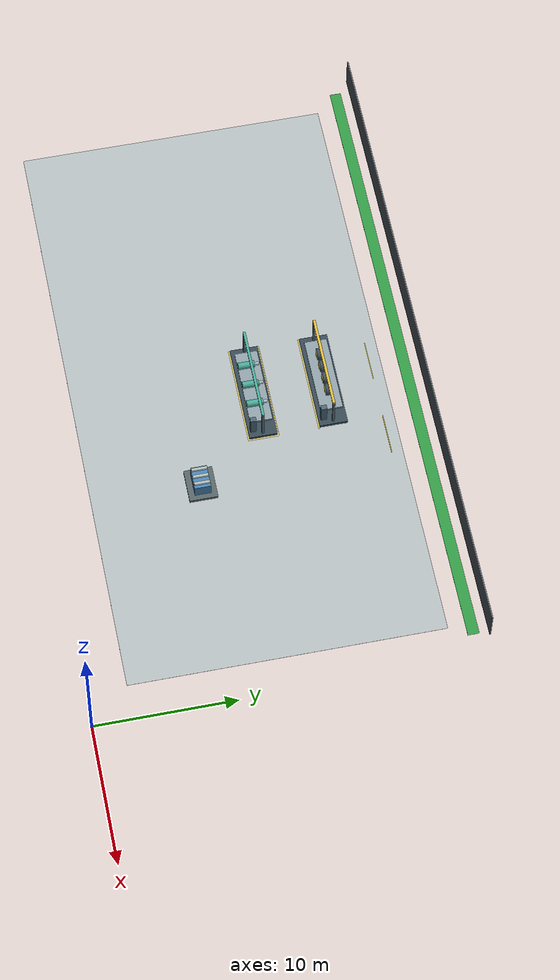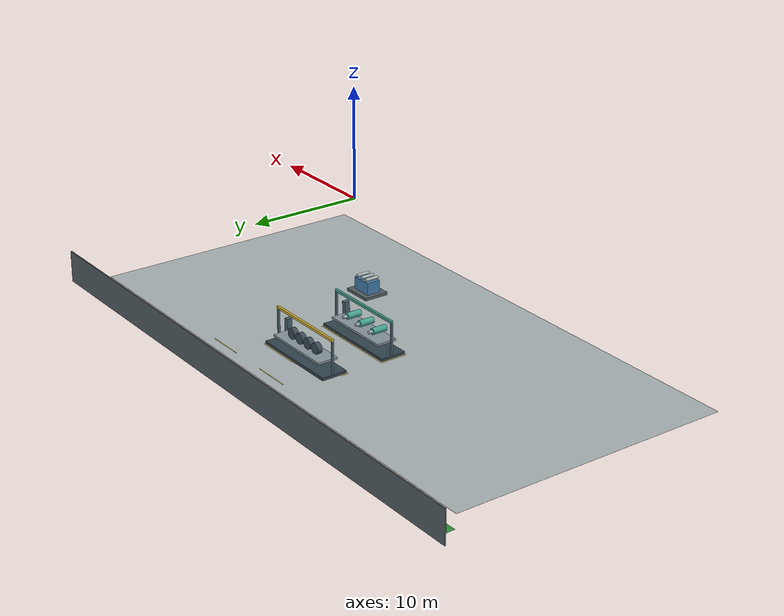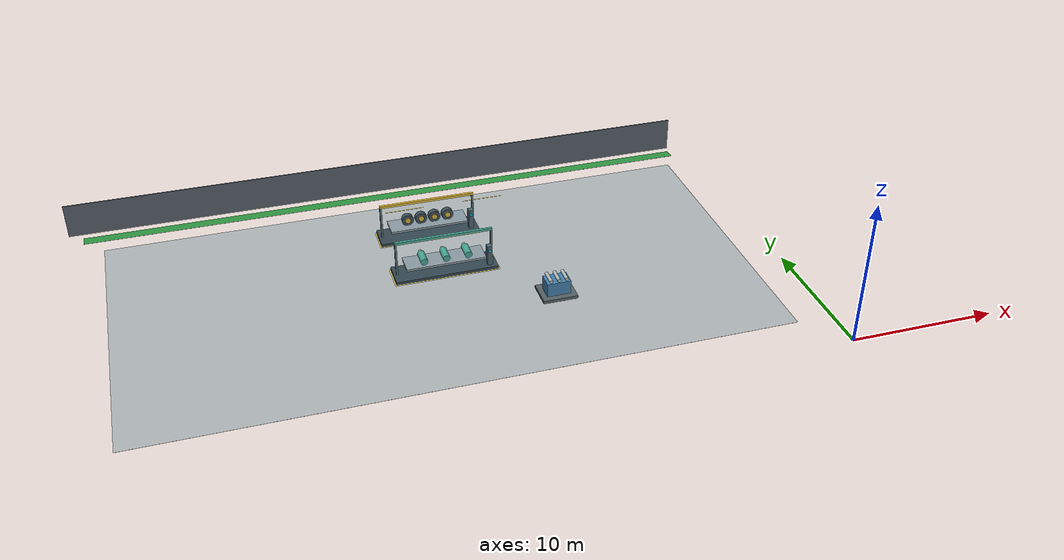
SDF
<sdf version="1.7">
 <world name="warehouse_layout_demo">
  <include><uri>model://sun</uri></include>
  <model name="nw_working_floor">
   <static>true</static>
   <pose>-24.0 13.8 0.012 0 0 0</pose>
   <link name="marking">
    <visual name="visual">
     <geometry><box><size>43.0 22.0 0.012</size></box></geometry>
     <material><ambient>0.67 0.70 0.71 1</ambient><diffuse>0.67 0.70 0.71 1</diffuse></material>
    </visual>
   </link>
  </model>
  <model name="pedestrian_north_west">
   <static>true</static>
   <pose>-24.3 26.4 0.055 0 0 0</pose>
   <link name="marking">
    <visual name="visual">
     <geometry><box><size>45.2 0.8 0.012</size></box></geometry>
     <material><ambient>0.18 0.57 0.25 1</ambient><diffuse>0.18 0.57 0.25 1</diffuse></material>
    </visual>
   </link>
  </model>
  <model name="north_fence_west">
   <static>true</static>
   <pose>-24.7 27.5 1.25 0 0 0</pose>
   <link name="link">
    <collision name="collision">
     <geometry><box><size>46.4 0.09 2.5</size></box></geometry>
     <surface><friction><ode><mu>0.9</mu><mu2>0.9</mu2></ode></friction></surface>
    </collision>
    <visual name="visual">
     <geometry><box><size>46.4 0.09 2.5</size></box></geometry>
     <material><ambient>0.33 0.37 0.40 1</ambient><diffuse>0.33 0.37 0.40 1</diffuse></material>
    </visual>
   </link>
  </model>
  <model name="parts_kit_2_line_2_nw">
   <static>true</static>
   <pose>-16.5 10.5 0 0 0 0</pose>
   <link name="fixture">
    <collision name="collision">
     <pose>0 0 0.9 0 0 0</pose>
     <geometry><box><size>2.4 2.0 1.8</size></box></geometry>
    </collision>
    <visual name="kit_frame">
     <pose>0 0 0.12 0 0 0</pose>
     <geometry><box><size>2.4 2.0 0.24</size></box></geometry>
     <material><ambient>0.32 0.37 0.38 1</ambient><diffuse>0.32 0.37 0.38 1</diffuse></material>
    </visual>
    <visual name="engine_crate">
     <pose>0 0 0.7 0 0 0</pose>
     <geometry><box><size>1.65 1.14 1.02</size></box></geometry>
     <material><ambient>0.26 0.49 0.67 1</ambient><diffuse>0.26 0.49 0.67 1</diffuse></material>
    </visual>
    <visual name="pipe_0">
     <pose>-0.55 0 1.38 1.57079632679 0 0</pose>
     <geometry><cylinder><radius>0.12</radius><length>1.1</length></cylinder></geometry>
     <material><ambient>0.69 0.73 0.72 1</ambient><diffuse>0.69 0.73 0.72 1</diffuse></material>
    </visual>
    <visual name="pipe_1">
     <pose>0 0 1.38 1.57079632679 0 0</pose>
     <geometry><cylinder><radius>0.12</radius><length>1.1</length></cylinder></geometry>
     <material><ambient>0.69 0.73 0.72 1</ambient><diffuse>0.69 0.73 0.72 1</diffuse></material>
    </visual>
    <visual name="pipe_2">
     <pose>0.55 0 1.38 1.57079632679 0 0</pose>
     <geometry><cylinder><radius>0.12</radius><length>1.1</length></cylinder></geometry>
     <material><ambient>0.69 0.73 0.72 1</ambient><diffuse>0.69 0.73 0.72 1</diffuse></material>
    </visual>
   </link>
  </model>
  <model name="part_stage_2_line_3_nw_pad">
   <static>true</static>
   <pose>-23.0 15.5 0.012 0 0 0</pose>
   <link name="marking">
    <visual name="visual">
     <geometry><box><size>7.4 2.2 0.012</size></box></geometry>
     <material><ambient>0.87 0.78 0.39 1</ambient><diffuse>0.87 0.78 0.39 1</diffuse></material>
    </visual>
   </link>
  </model>
  <model name="part_stage_2_line_3_nw">
   <static>true</static>
   <pose>-23.0 15.5 0 0 0 0</pose>
   <link name="fixture">
    <collision name="collision">
     <pose>0 0 1.4 0 0 0</pose>
     <geometry><box><size>7.2 2.0 2.8</size></box></geometry>
    </collision>
    <visual name="machine_base">
     <pose>0 0 0.12 0 0 0</pose>
     <geometry><box><size>7.2 2.0 0.24</size></box></geometry>
     <material><ambient>0.20 0.27 0.31 1</ambient><diffuse>0.20 0.27 0.31 1</diffuse></material>
    </visual>
    <visual name="work_table">
     <pose>0 0 0.92 0 0 0</pose>
     <geometry><box><size>5.6 1.6 0.16</size></box></geometry>
     <material><ambient>0.53 0.59 0.62 1</ambient><diffuse>0.53 0.59 0.62 1</diffuse></material>
    </visual>
    <visual name="controller">
     <pose>3.05 -0.63 1.06 0 0 0</pose>
     <geometry><box><size>0.35 0.42 1.46</size></box></geometry>
     <material><ambient>0.29 0.38 0.43 1</ambient><diffuse>0.29 0.38 0.43 1</diffuse></material>
    </visual>
    <visual name="control_screen">
     <pose>3.05 -0.85 1.45 0 0 0</pose>
     <geometry><box><size>0.25 0.02 0.2</size></box></geometry>
     <material><ambient>0.09 0.64 0.75 1</ambient><diffuse>0.09 0.64 0.75 1</diffuse></material>
    </visual>
    <visual name="hoist_post_0">
     <pose>-3.35 0 1.4 0 0 0</pose>
     <geometry><box><size>0.14 0.16 2.72</size></box></geometry>
     <material><ambient>0.31 0.40 0.45 1</ambient><diffuse>0.31 0.40 0.45 1</diffuse></material>
    </visual>
    <visual name="hoist_post_1">
     <pose>3.35 0 1.4 0 0 0</pose>
     <geometry><box><size>0.14 0.16 2.72</size></box></geometry>
     <material><ambient>0.31 0.40 0.45 1</ambient><diffuse>0.31 0.40 0.45 1</diffuse></material>
    </visual>
    <visual name="hoist_beam">
     <pose>0 0 2.71 0 0 0</pose>
     <geometry><box><size>6.85 0.18 0.18</size></box></geometry>
     <material><ambient>0.27 0.64 0.57 1</ambient><diffuse>0.27 0.64 0.57 1</diffuse></material>
    </visual>
    <visual name="ram_body_0">
     <pose>-1.55 -0.22 1.39 1.57079632679 0 0</pose>
     <geometry><cylinder><radius>0.25</radius><length>1.15</length></cylinder></geometry>
     <material><ambient>0.27 0.64 0.57 1</ambient><diffuse>0.27 0.64 0.57 1</diffuse></material>
    </visual>
    <visual name="ram_rod_0">
     <pose>-1.55 0.36 1.39 1.57079632679 0 0</pose>
     <geometry><cylinder><radius>0.12</radius><length>0.64</length></cylinder></geometry>
     <material><ambient>0.64 0.69 0.71 1</ambient><diffuse>0.64 0.69 0.71 1</diffuse></material>
    </visual>
    <visual name="ram_body_1">
     <pose>0 -0.22 1.39 1.57079632679 0 0</pose>
     <geometry><cylinder><radius>0.25</radius><length>1.15</length></cylinder></geometry>
     <material><ambient>0.27 0.64 0.57 1</ambient><diffuse>0.27 0.64 0.57 1</diffuse></material>
    </visual>
    <visual name="ram_rod_1">
     <pose>0 0.36 1.39 1.57079632679 0 0</pose>
     <geometry><cylinder><radius>0.12</radius><length>0.64</length></cylinder></geometry>
     <material><ambient>0.64 0.69 0.71 1</ambient><diffuse>0.64 0.69 0.71 1</diffuse></material>
    </visual>
    <visual name="ram_body_2">
     <pose>1.55 -0.22 1.39 1.57079632679 0 0</pose>
     <geometry><cylinder><radius>0.25</radius><length>1.15</length></cylinder></geometry>
     <material><ambient>0.27 0.64 0.57 1</ambient><diffuse>0.27 0.64 0.57 1</diffuse></material>
    </visual>
    <visual name="ram_rod_2">
     <pose>1.55 0.36 1.39 1.57079632679 0 0</pose>
     <geometry><cylinder><radius>0.12</radius><length>0.64</length></cylinder></geometry>
     <material><ambient>0.64 0.69 0.71 1</ambient><diffuse>0.64 0.69 0.71 1</diffuse></material>
    </visual>
   </link>
  </model>
  <model name="part_stage_2_line_4_nw_pad">
   <static>true</static>
   <pose>-23.0 20.5 0.012 0 0 0</pose>
   <link name="marking">
    <visual name="visual">
     <geometry><box><size>7.4 2.2 0.012</size></box></geometry>
     <material><ambient>0.87 0.78 0.39 1</ambient><diffuse>0.87 0.78 0.39 1</diffuse></material>
    </visual>
   </link>
  </model>
  <model name="part_stage_2_line_4_nw">
   <static>true</static>
   <pose>-23.0 20.5 0 0 0 0</pose>
   <link name="fixture">
    <collision name="collision">
     <pose>0 0 1.4 0 0 0</pose>
     <geometry><box><size>7.2 2.0 2.8</size></box></geometry>
    </collision>
    <visual name="machine_base">
     <pose>0 0 0.12 0 0 0</pose>
     <geometry><box><size>7.2 2.0 0.24</size></box></geometry>
     <material><ambient>0.20 0.27 0.31 1</ambient><diffuse>0.20 0.27 0.31 1</diffuse></material>
    </visual>
    <visual name="work_table">
     <pose>0 0 0.92 0 0 0</pose>
     <geometry><box><size>5.6 1.6 0.16</size></box></geometry>
     <material><ambient>0.53 0.59 0.62 1</ambient><diffuse>0.53 0.59 0.62 1</diffuse></material>
    </visual>
    <visual name="controller">
     <pose>3.05 -0.63 1.06 0 0 0</pose>
     <geometry><box><size>0.35 0.42 1.46</size></box></geometry>
     <material><ambient>0.29 0.38 0.43 1</ambient><diffuse>0.29 0.38 0.43 1</diffuse></material>
    </visual>
    <visual name="control_screen">
     <pose>3.05 -0.85 1.45 0 0 0</pose>
     <geometry><box><size>0.25 0.02 0.2</size></box></geometry>
     <material><ambient>0.09 0.64 0.75 1</ambient><diffuse>0.09 0.64 0.75 1</diffuse></material>
    </visual>
    <visual name="hoist_post_0">
     <pose>-3.35 0 1.4 0 0 0</pose>
     <geometry><box><size>0.14 0.16 2.72</size></box></geometry>
     <material><ambient>0.31 0.40 0.45 1</ambient><diffuse>0.31 0.40 0.45 1</diffuse></material>
    </visual>
    <visual name="hoist_post_1">
     <pose>3.35 0 1.4 0 0 0</pose>
     <geometry><box><size>0.14 0.16 2.72</size></box></geometry>
     <material><ambient>0.31 0.40 0.45 1</ambient><diffuse>0.31 0.40 0.45 1</diffuse></material>
    </visual>
    <visual name="hoist_beam">
     <pose>0 0 2.71 0 0 0</pose>
     <geometry><box><size>6.85 0.18 0.18</size></box></geometry>
     <material><ambient>0.84 0.70 0.20 1</ambient><diffuse>0.84 0.70 0.20 1</diffuse></material>
    </visual>
    <visual name="cable_reel_0">
     <pose>-1.45 0 1.38 1.57079632679 0 0</pose>
     <geometry><cylinder><radius>0.42</radius><length>0.38</length></cylinder></geometry>
     <material><ambient>0.23 0.30 0.34 1</ambient><diffuse>0.23 0.30 0.34 1</diffuse></material>
    </visual>
    <visual name="cable_hub_0">
     <pose>-1.45 -0.21 1.38 1.57079632679 0 0</pose>
     <geometry><cylinder><radius>0.2</radius><length>0.05</length></cylinder></geometry>
     <material><ambient>0.84 0.70 0.20 1</ambient><diffuse>0.84 0.70 0.20 1</diffuse></material>
    </visual>
    <visual name="cable_reel_1">
     <pose>-0.48 0 1.38 1.57079632679 0 0</pose>
     <geometry><cylinder><radius>0.42</radius><length>0.38</length></cylinder></geometry>
     <material><ambient>0.23 0.30 0.34 1</ambient><diffuse>0.23 0.30 0.34 1</diffuse></material>
    </visual>
    <visual name="cable_hub_1">
     <pose>-0.48 -0.21 1.38 1.57079632679 0 0</pose>
     <geometry><cylinder><radius>0.2</radius><length>0.05</length></cylinder></geometry>
     <material><ambient>0.84 0.70 0.20 1</ambient><diffuse>0.84 0.70 0.20 1</diffuse></material>
    </visual>
    <visual name="cable_reel_2">
     <pose>0.49 0 1.38 1.57079632679 0 0</pose>
     <geometry><cylinder><radius>0.42</radius><length>0.38</length></cylinder></geometry>
     <material><ambient>0.23 0.30 0.34 1</ambient><diffuse>0.23 0.30 0.34 1</diffuse></material>
    </visual>
    <visual name="cable_hub_2">
     <pose>0.49 -0.21 1.38 1.57079632679 0 0</pose>
     <geometry><cylinder><radius>0.2</radius><length>0.05</length></cylinder></geometry>
     <material><ambient>0.84 0.70 0.20 1</ambient><diffuse>0.84 0.70 0.20 1</diffuse></material>
    </visual>
    <visual name="cable_reel_3">
     <pose>1.46 0 1.38 1.57079632679 0 0</pose>
     <geometry><cylinder><radius>0.42</radius><length>0.38</length></cylinder></geometry>
     <material><ambient>0.23 0.30 0.34 1</ambient><diffuse>0.23 0.30 0.34 1</diffuse></material>
    </visual>
    <visual name="cable_hub_3">
     <pose>1.46 -0.21 1.38 1.57079632679 0 0</pose>
     <geometry><cylinder><radius>0.2</radius><length>0.05</length></cylinder></geometry>
     <material><ambient>0.84 0.70 0.20 1</ambient><diffuse>0.84 0.70 0.20 1</diffuse></material>
    </visual>
   </link>
  </model>
  <model name="road_dashed_line_4">
   <static>true</static>
   <pose>-24 24.0 0.045 0 0 0</pose>
   <link name="marking">
    <visual name="visual">
     <geometry><box><size>3.0 0.042 0.012</size></box></geometry>
     <material><ambient>0.96 0.82 0.12 1</ambient><diffuse>0.96 0.82 0.12 1</diffuse></material>
    </visual>
   </link>
  </model>
  <model name="road_dashed_line_5">
   <static>true</static>
   <pose>-18 24.0 0.045 0 0 0</pose>
   <link name="marking">
    <visual name="visual">
     <geometry><box><size>3.0 0.042 0.012</size></box></geometry>
     <material><ambient>0.96 0.82 0.12 1</ambient><diffuse>0.96 0.82 0.12 1</diffuse></material>
    </visual>
   </link>
  </model>
 </world>
</sdf>
